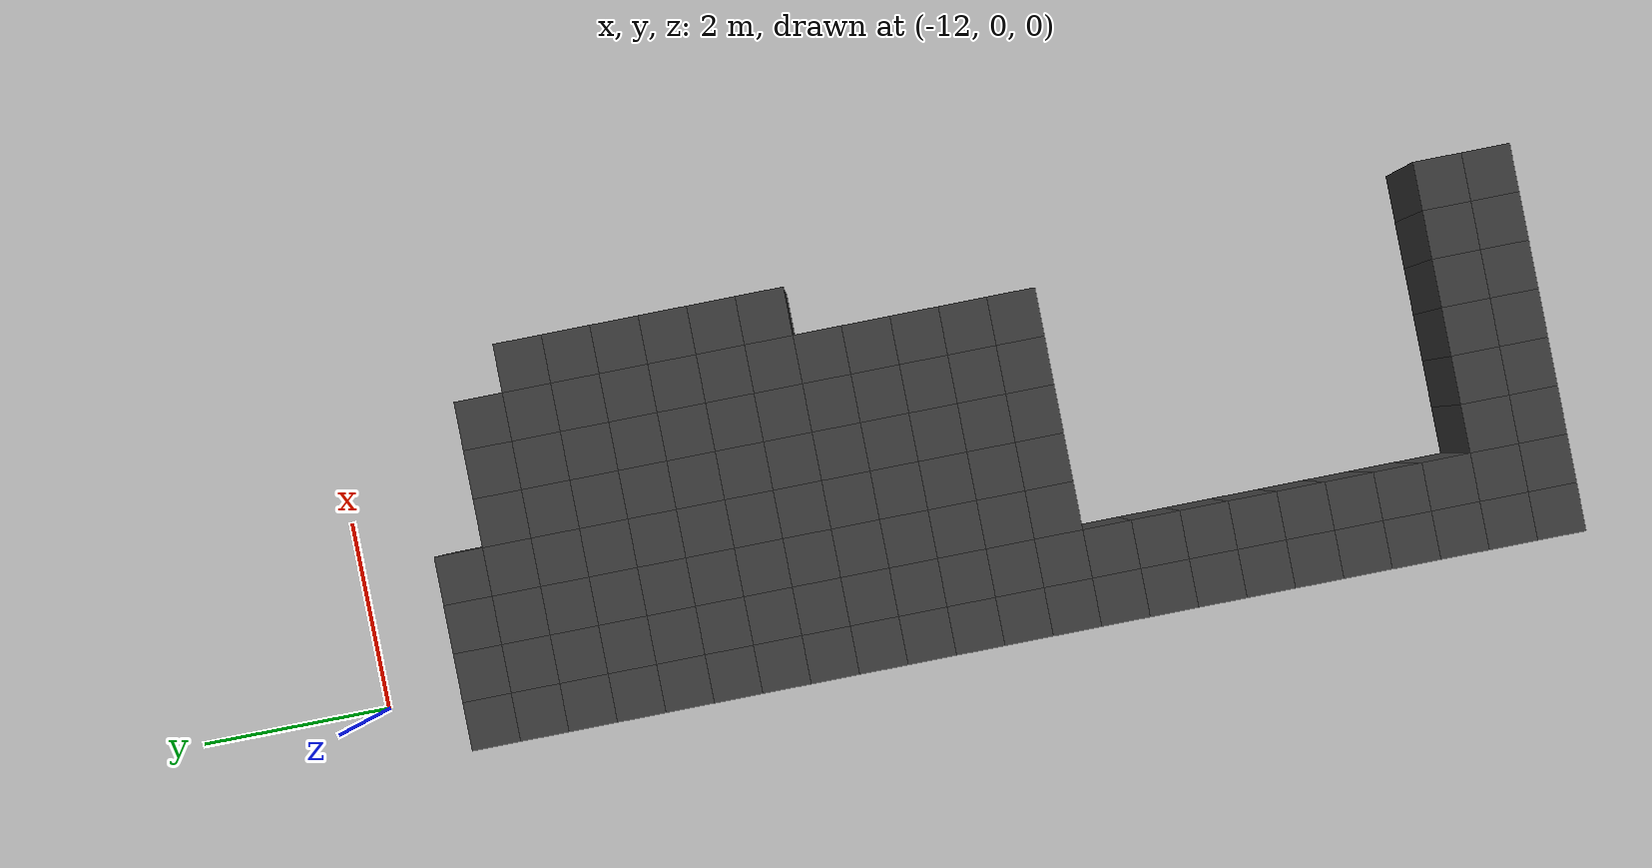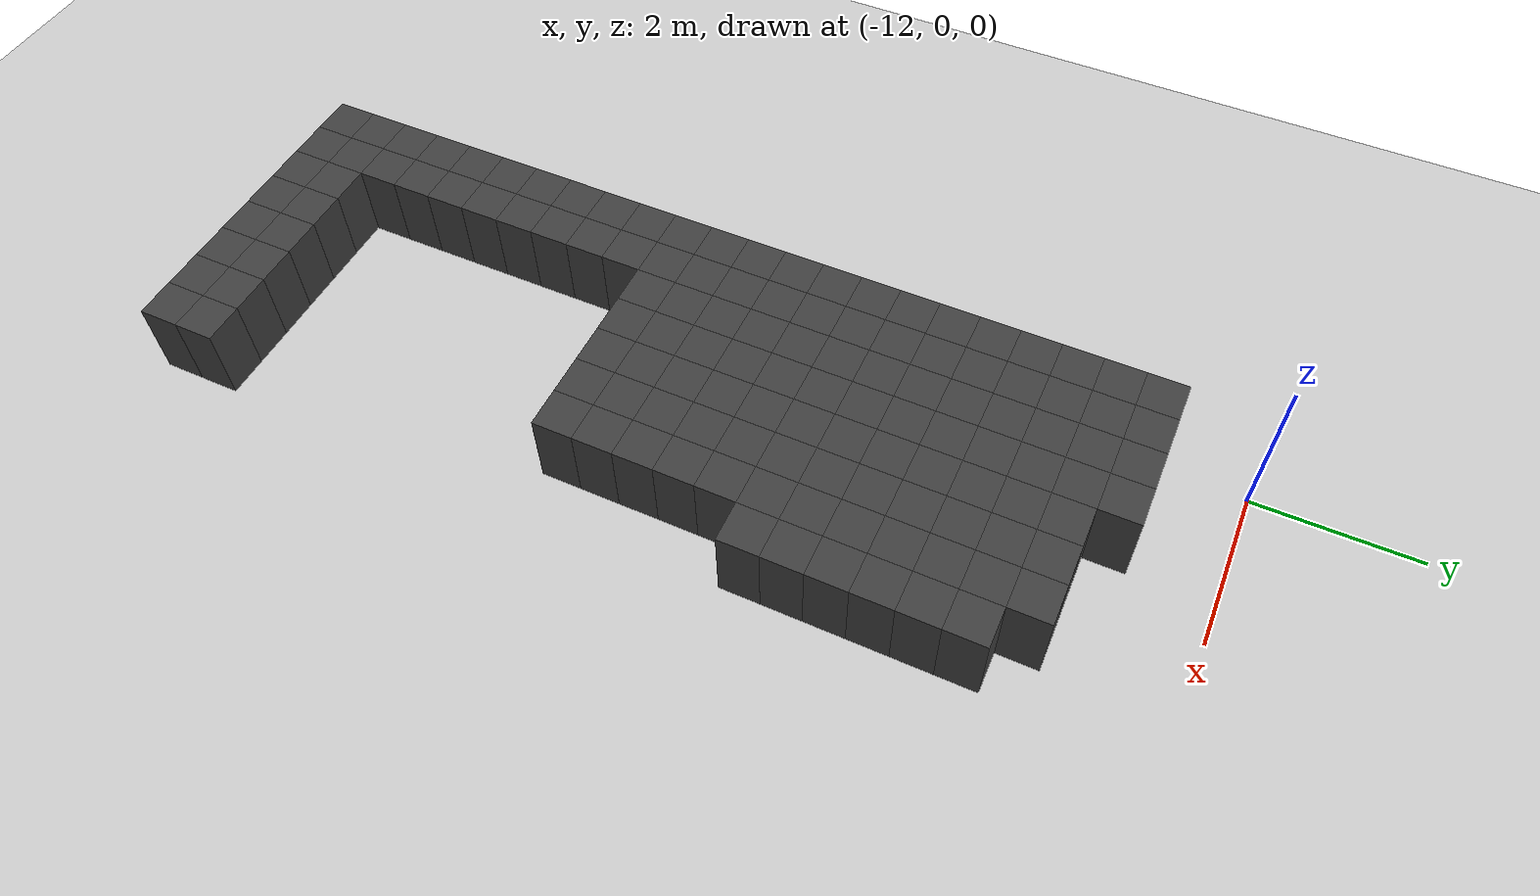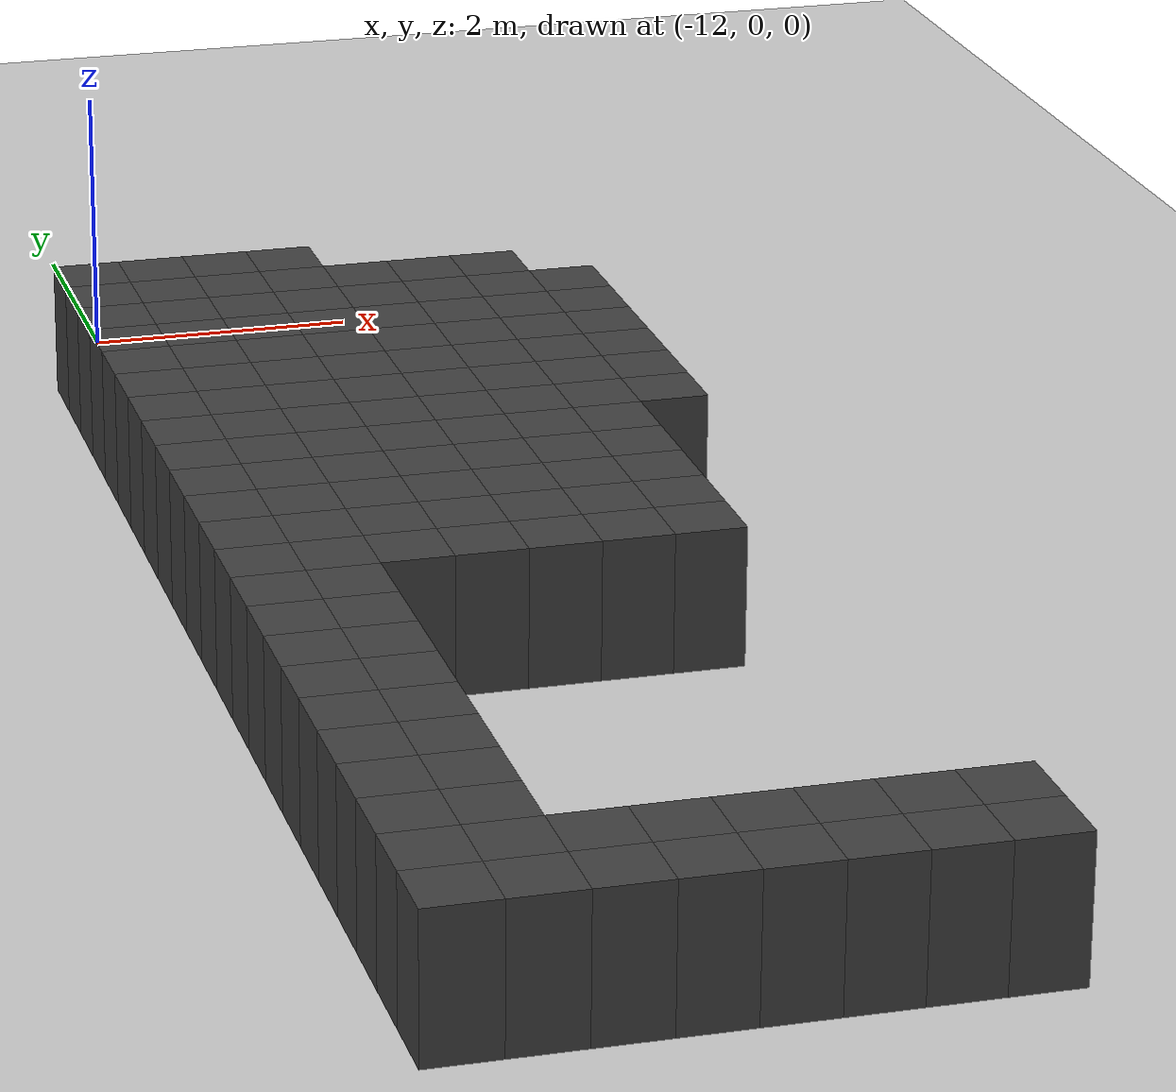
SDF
<sdf version="1.7">
 <world name="map_14190">
  <model name="ground_plane">
   <static>true</static>
   <link name="link">
    <collision name="collision">
     <geometry><plane><normal>0 0 1</normal><size>200 200</size></plane></geometry>
    </collision>
    <visual name="visual">
     <geometry><plane><normal>0 0 1</normal><size>200 200</size></plane></geometry>
     <material><ambient>0.8 0.8 0.8 1</ambient><diffuse>0.8 0.8 0.8 1</diffuse></material>
    </visual>
   </link>
  </model>
  <model name="maze_environment">
   <static>true</static>
   <link name="wall_952">
    <pose>-12.250 -1.250 0.500 0 0 0</pose>
    <collision name="col"><geometry><box><size>0.5 0.5 1.0</size></box></geometry></collision>
    <visual name="vis">
     <geometry><box><size>0.5 0.5 1.0</size></box></geometry>
     <material><ambient>0.15 0.15 0.15 1</ambient><diffuse>0.25 0.25 0.25 1</diffuse></material>
    </visual>
   </link>
   <link name="wall_953">
    <pose>-11.750 -1.250 0.500 0 0 0</pose>
    <collision name="col"><geometry><box><size>0.5 0.5 1.0</size></box></geometry></collision>
    <visual name="vis">
     <geometry><box><size>0.5 0.5 1.0</size></box></geometry>
     <material><ambient>0.15 0.15 0.15 1</ambient><diffuse>0.25 0.25 0.25 1</diffuse></material>
    </visual>
   </link>
   <link name="wall_954">
    <pose>-11.250 -1.250 0.500 0 0 0</pose>
    <collision name="col"><geometry><box><size>0.5 0.5 1.0</size></box></geometry></collision>
    <visual name="vis">
     <geometry><box><size>0.5 0.5 1.0</size></box></geometry>
     <material><ambient>0.15 0.15 0.15 1</ambient><diffuse>0.25 0.25 0.25 1</diffuse></material>
    </visual>
   </link>
   <link name="wall_955">
    <pose>-10.750 -1.250 0.500 0 0 0</pose>
    <collision name="col"><geometry><box><size>0.5 0.5 1.0</size></box></geometry></collision>
    <visual name="vis">
     <geometry><box><size>0.5 0.5 1.0</size></box></geometry>
     <material><ambient>0.15 0.15 0.15 1</ambient><diffuse>0.25 0.25 0.25 1</diffuse></material>
    </visual>
   </link>
   <link name="wall_985">
    <pose>-12.250 -1.750 0.500 0 0 0</pose>
    <collision name="col"><geometry><box><size>0.5 0.5 1.0</size></box></geometry></collision>
    <visual name="vis">
     <geometry><box><size>0.5 0.5 1.0</size></box></geometry>
     <material><ambient>0.15 0.15 0.15 1</ambient><diffuse>0.25 0.25 0.25 1</diffuse></material>
    </visual>
   </link>
   <link name="wall_986">
    <pose>-11.750 -1.750 0.500 0 0 0</pose>
    <collision name="col"><geometry><box><size>0.5 0.5 1.0</size></box></geometry></collision>
    <visual name="vis">
     <geometry><box><size>0.5 0.5 1.0</size></box></geometry>
     <material><ambient>0.15 0.15 0.15 1</ambient><diffuse>0.25 0.25 0.25 1</diffuse></material>
    </visual>
   </link>
   <link name="wall_987">
    <pose>-11.250 -1.750 0.500 0 0 0</pose>
    <collision name="col"><geometry><box><size>0.5 0.5 1.0</size></box></geometry></collision>
    <visual name="vis">
     <geometry><box><size>0.5 0.5 1.0</size></box></geometry>
     <material><ambient>0.15 0.15 0.15 1</ambient><diffuse>0.25 0.25 0.25 1</diffuse></material>
    </visual>
   </link>
   <link name="wall_988">
    <pose>-10.750 -1.750 0.500 0 0 0</pose>
    <collision name="col"><geometry><box><size>0.5 0.5 1.0</size></box></geometry></collision>
    <visual name="vis">
     <geometry><box><size>0.5 0.5 1.0</size></box></geometry>
     <material><ambient>0.15 0.15 0.15 1</ambient><diffuse>0.25 0.25 0.25 1</diffuse></material>
    </visual>
   </link>
   <link name="wall_989">
    <pose>-10.250 -1.750 0.500 0 0 0</pose>
    <collision name="col"><geometry><box><size>0.5 0.5 1.0</size></box></geometry></collision>
    <visual name="vis">
     <geometry><box><size>0.5 0.5 1.0</size></box></geometry>
     <material><ambient>0.15 0.15 0.15 1</ambient><diffuse>0.25 0.25 0.25 1</diffuse></material>
    </visual>
   </link>
   <link name="wall_990">
    <pose>-9.750 -1.750 0.500 0 0 0</pose>
    <collision name="col"><geometry><box><size>0.5 0.5 1.0</size></box></geometry></collision>
    <visual name="vis">
     <geometry><box><size>0.5 0.5 1.0</size></box></geometry>
     <material><ambient>0.15 0.15 0.15 1</ambient><diffuse>0.25 0.25 0.25 1</diffuse></material>
    </visual>
   </link>
   <link name="wall_991">
    <pose>-9.250 -1.750 0.500 0 0 0</pose>
    <collision name="col"><geometry><box><size>0.5 0.5 1.0</size></box></geometry></collision>
    <visual name="vis">
     <geometry><box><size>0.5 0.5 1.0</size></box></geometry>
     <material><ambient>0.15 0.15 0.15 1</ambient><diffuse>0.25 0.25 0.25 1</diffuse></material>
    </visual>
   </link>
   <link name="wall_1014">
    <pose>-12.250 -2.250 0.500 0 0 0</pose>
    <collision name="col"><geometry><box><size>0.5 0.5 1.0</size></box></geometry></collision>
    <visual name="vis">
     <geometry><box><size>0.5 0.5 1.0</size></box></geometry>
     <material><ambient>0.15 0.15 0.15 1</ambient><diffuse>0.25 0.25 0.25 1</diffuse></material>
    </visual>
   </link>
   <link name="wall_1015">
    <pose>-11.750 -2.250 0.500 0 0 0</pose>
    <collision name="col"><geometry><box><size>0.5 0.5 1.0</size></box></geometry></collision>
    <visual name="vis">
     <geometry><box><size>0.5 0.5 1.0</size></box></geometry>
     <material><ambient>0.15 0.15 0.15 1</ambient><diffuse>0.25 0.25 0.25 1</diffuse></material>
    </visual>
   </link>
   <link name="wall_1016">
    <pose>-11.250 -2.250 0.500 0 0 0</pose>
    <collision name="col"><geometry><box><size>0.5 0.5 1.0</size></box></geometry></collision>
    <visual name="vis">
     <geometry><box><size>0.5 0.5 1.0</size></box></geometry>
     <material><ambient>0.15 0.15 0.15 1</ambient><diffuse>0.25 0.25 0.25 1</diffuse></material>
    </visual>
   </link>
   <link name="wall_1017">
    <pose>-10.750 -2.250 0.500 0 0 0</pose>
    <collision name="col"><geometry><box><size>0.5 0.5 1.0</size></box></geometry></collision>
    <visual name="vis">
     <geometry><box><size>0.5 0.5 1.0</size></box></geometry>
     <material><ambient>0.15 0.15 0.15 1</ambient><diffuse>0.25 0.25 0.25 1</diffuse></material>
    </visual>
   </link>
   <link name="wall_1018">
    <pose>-10.250 -2.250 0.500 0 0 0</pose>
    <collision name="col"><geometry><box><size>0.5 0.5 1.0</size></box></geometry></collision>
    <visual name="vis">
     <geometry><box><size>0.5 0.5 1.0</size></box></geometry>
     <material><ambient>0.15 0.15 0.15 1</ambient><diffuse>0.25 0.25 0.25 1</diffuse></material>
    </visual>
   </link>
   <link name="wall_1019">
    <pose>-9.750 -2.250 0.500 0 0 0</pose>
    <collision name="col"><geometry><box><size>0.5 0.5 1.0</size></box></geometry></collision>
    <visual name="vis">
     <geometry><box><size>0.5 0.5 1.0</size></box></geometry>
     <material><ambient>0.15 0.15 0.15 1</ambient><diffuse>0.25 0.25 0.25 1</diffuse></material>
    </visual>
   </link>
   <link name="wall_1020">
    <pose>-9.250 -2.250 0.500 0 0 0</pose>
    <collision name="col"><geometry><box><size>0.5 0.5 1.0</size></box></geometry></collision>
    <visual name="vis">
     <geometry><box><size>0.5 0.5 1.0</size></box></geometry>
     <material><ambient>0.15 0.15 0.15 1</ambient><diffuse>0.25 0.25 0.25 1</diffuse></material>
    </visual>
   </link>
   <link name="wall_1021">
    <pose>-8.750 -2.250 0.500 0 0 0</pose>
    <collision name="col"><geometry><box><size>0.5 0.5 1.0</size></box></geometry></collision>
    <visual name="vis">
     <geometry><box><size>0.5 0.5 1.0</size></box></geometry>
     <material><ambient>0.15 0.15 0.15 1</ambient><diffuse>0.25 0.25 0.25 1</diffuse></material>
    </visual>
   </link>
   <link name="wall_1045">
    <pose>-12.250 -2.750 0.500 0 0 0</pose>
    <collision name="col"><geometry><box><size>0.5 0.5 1.0</size></box></geometry></collision>
    <visual name="vis">
     <geometry><box><size>0.5 0.5 1.0</size></box></geometry>
     <material><ambient>0.15 0.15 0.15 1</ambient><diffuse>0.25 0.25 0.25 1</diffuse></material>
    </visual>
   </link>
   <link name="wall_1046">
    <pose>-11.750 -2.750 0.500 0 0 0</pose>
    <collision name="col"><geometry><box><size>0.5 0.5 1.0</size></box></geometry></collision>
    <visual name="vis">
     <geometry><box><size>0.5 0.5 1.0</size></box></geometry>
     <material><ambient>0.15 0.15 0.15 1</ambient><diffuse>0.25 0.25 0.25 1</diffuse></material>
    </visual>
   </link>
   <link name="wall_1047">
    <pose>-11.250 -2.750 0.500 0 0 0</pose>
    <collision name="col"><geometry><box><size>0.5 0.5 1.0</size></box></geometry></collision>
    <visual name="vis">
     <geometry><box><size>0.5 0.5 1.0</size></box></geometry>
     <material><ambient>0.15 0.15 0.15 1</ambient><diffuse>0.25 0.25 0.25 1</diffuse></material>
    </visual>
   </link>
   <link name="wall_1048">
    <pose>-10.750 -2.750 0.500 0 0 0</pose>
    <collision name="col"><geometry><box><size>0.5 0.5 1.0</size></box></geometry></collision>
    <visual name="vis">
     <geometry><box><size>0.5 0.5 1.0</size></box></geometry>
     <material><ambient>0.15 0.15 0.15 1</ambient><diffuse>0.25 0.25 0.25 1</diffuse></material>
    </visual>
   </link>
   <link name="wall_1049">
    <pose>-10.250 -2.750 0.500 0 0 0</pose>
    <collision name="col"><geometry><box><size>0.5 0.5 1.0</size></box></geometry></collision>
    <visual name="vis">
     <geometry><box><size>0.5 0.5 1.0</size></box></geometry>
     <material><ambient>0.15 0.15 0.15 1</ambient><diffuse>0.25 0.25 0.25 1</diffuse></material>
    </visual>
   </link>
   <link name="wall_1050">
    <pose>-9.750 -2.750 0.500 0 0 0</pose>
    <collision name="col"><geometry><box><size>0.5 0.5 1.0</size></box></geometry></collision>
    <visual name="vis">
     <geometry><box><size>0.5 0.5 1.0</size></box></geometry>
     <material><ambient>0.15 0.15 0.15 1</ambient><diffuse>0.25 0.25 0.25 1</diffuse></material>
    </visual>
   </link>
   <link name="wall_1051">
    <pose>-9.250 -2.750 0.500 0 0 0</pose>
    <collision name="col"><geometry><box><size>0.5 0.5 1.0</size></box></geometry></collision>
    <visual name="vis">
     <geometry><box><size>0.5 0.5 1.0</size></box></geometry>
     <material><ambient>0.15 0.15 0.15 1</ambient><diffuse>0.25 0.25 0.25 1</diffuse></material>
    </visual>
   </link>
   <link name="wall_1052">
    <pose>-8.750 -2.750 0.500 0 0 0</pose>
    <collision name="col"><geometry><box><size>0.5 0.5 1.0</size></box></geometry></collision>
    <visual name="vis">
     <geometry><box><size>0.5 0.5 1.0</size></box></geometry>
     <material><ambient>0.15 0.15 0.15 1</ambient><diffuse>0.25 0.25 0.25 1</diffuse></material>
    </visual>
   </link>
   <link name="wall_1082">
    <pose>-12.250 -3.250 0.500 0 0 0</pose>
    <collision name="col"><geometry><box><size>0.5 0.5 1.0</size></box></geometry></collision>
    <visual name="vis">
     <geometry><box><size>0.5 0.5 1.0</size></box></geometry>
     <material><ambient>0.15 0.15 0.15 1</ambient><diffuse>0.25 0.25 0.25 1</diffuse></material>
    </visual>
   </link>
   <link name="wall_1083">
    <pose>-11.750 -3.250 0.500 0 0 0</pose>
    <collision name="col"><geometry><box><size>0.5 0.5 1.0</size></box></geometry></collision>
    <visual name="vis">
     <geometry><box><size>0.5 0.5 1.0</size></box></geometry>
     <material><ambient>0.15 0.15 0.15 1</ambient><diffuse>0.25 0.25 0.25 1</diffuse></material>
    </visual>
   </link>
   <link name="wall_1084">
    <pose>-11.250 -3.250 0.500 0 0 0</pose>
    <collision name="col"><geometry><box><size>0.5 0.5 1.0</size></box></geometry></collision>
    <visual name="vis">
     <geometry><box><size>0.5 0.5 1.0</size></box></geometry>
     <material><ambient>0.15 0.15 0.15 1</ambient><diffuse>0.25 0.25 0.25 1</diffuse></material>
    </visual>
   </link>
   <link name="wall_1085">
    <pose>-10.750 -3.250 0.500 0 0 0</pose>
    <collision name="col"><geometry><box><size>0.5 0.5 1.0</size></box></geometry></collision>
    <visual name="vis">
     <geometry><box><size>0.5 0.5 1.0</size></box></geometry>
     <material><ambient>0.15 0.15 0.15 1</ambient><diffuse>0.25 0.25 0.25 1</diffuse></material>
    </visual>
   </link>
   <link name="wall_1086">
    <pose>-10.250 -3.250 0.500 0 0 0</pose>
    <collision name="col"><geometry><box><size>0.5 0.5 1.0</size></box></geometry></collision>
    <visual name="vis">
     <geometry><box><size>0.5 0.5 1.0</size></box></geometry>
     <material><ambient>0.15 0.15 0.15 1</ambient><diffuse>0.25 0.25 0.25 1</diffuse></material>
    </visual>
   </link>
   <link name="wall_1087">
    <pose>-9.750 -3.250 0.500 0 0 0</pose>
    <collision name="col"><geometry><box><size>0.5 0.5 1.0</size></box></geometry></collision>
    <visual name="vis">
     <geometry><box><size>0.5 0.5 1.0</size></box></geometry>
     <material><ambient>0.15 0.15 0.15 1</ambient><diffuse>0.25 0.25 0.25 1</diffuse></material>
    </visual>
   </link>
   <link name="wall_1088">
    <pose>-9.250 -3.250 0.500 0 0 0</pose>
    <collision name="col"><geometry><box><size>0.5 0.5 1.0</size></box></geometry></collision>
    <visual name="vis">
     <geometry><box><size>0.5 0.5 1.0</size></box></geometry>
     <material><ambient>0.15 0.15 0.15 1</ambient><diffuse>0.25 0.25 0.25 1</diffuse></material>
    </visual>
   </link>
   <link name="wall_1089">
    <pose>-8.750 -3.250 0.500 0 0 0</pose>
    <collision name="col"><geometry><box><size>0.5 0.5 1.0</size></box></geometry></collision>
    <visual name="vis">
     <geometry><box><size>0.5 0.5 1.0</size></box></geometry>
     <material><ambient>0.15 0.15 0.15 1</ambient><diffuse>0.25 0.25 0.25 1</diffuse></material>
    </visual>
   </link>
   <link name="wall_1116">
    <pose>-12.250 -3.750 0.500 0 0 0</pose>
    <collision name="col"><geometry><box><size>0.5 0.5 1.0</size></box></geometry></collision>
    <visual name="vis">
     <geometry><box><size>0.5 0.5 1.0</size></box></geometry>
     <material><ambient>0.15 0.15 0.15 1</ambient><diffuse>0.25 0.25 0.25 1</diffuse></material>
    </visual>
   </link>
   <link name="wall_1117">
    <pose>-11.750 -3.750 0.500 0 0 0</pose>
    <collision name="col"><geometry><box><size>0.5 0.5 1.0</size></box></geometry></collision>
    <visual name="vis">
     <geometry><box><size>0.5 0.5 1.0</size></box></geometry>
     <material><ambient>0.15 0.15 0.15 1</ambient><diffuse>0.25 0.25 0.25 1</diffuse></material>
    </visual>
   </link>
   <link name="wall_1118">
    <pose>-11.250 -3.750 0.500 0 0 0</pose>
    <collision name="col"><geometry><box><size>0.5 0.5 1.0</size></box></geometry></collision>
    <visual name="vis">
     <geometry><box><size>0.5 0.5 1.0</size></box></geometry>
     <material><ambient>0.15 0.15 0.15 1</ambient><diffuse>0.25 0.25 0.25 1</diffuse></material>
    </visual>
   </link>
   <link name="wall_1119">
    <pose>-10.750 -3.750 0.500 0 0 0</pose>
    <collision name="col"><geometry><box><size>0.5 0.5 1.0</size></box></geometry></collision>
    <visual name="vis">
     <geometry><box><size>0.5 0.5 1.0</size></box></geometry>
     <material><ambient>0.15 0.15 0.15 1</ambient><diffuse>0.25 0.25 0.25 1</diffuse></material>
    </visual>
   </link>
   <link name="wall_1120">
    <pose>-10.250 -3.750 0.500 0 0 0</pose>
    <collision name="col"><geometry><box><size>0.5 0.5 1.0</size></box></geometry></collision>
    <visual name="vis">
     <geometry><box><size>0.5 0.5 1.0</size></box></geometry>
     <material><ambient>0.15 0.15 0.15 1</ambient><diffuse>0.25 0.25 0.25 1</diffuse></material>
    </visual>
   </link>
   <link name="wall_1121">
    <pose>-9.750 -3.750 0.500 0 0 0</pose>
    <collision name="col"><geometry><box><size>0.5 0.5 1.0</size></box></geometry></collision>
    <visual name="vis">
     <geometry><box><size>0.5 0.5 1.0</size></box></geometry>
     <material><ambient>0.15 0.15 0.15 1</ambient><diffuse>0.25 0.25 0.25 1</diffuse></material>
    </visual>
   </link>
   <link name="wall_1122">
    <pose>-9.250 -3.750 0.500 0 0 0</pose>
    <collision name="col"><geometry><box><size>0.5 0.5 1.0</size></box></geometry></collision>
    <visual name="vis">
     <geometry><box><size>0.5 0.5 1.0</size></box></geometry>
     <material><ambient>0.15 0.15 0.15 1</ambient><diffuse>0.25 0.25 0.25 1</diffuse></material>
    </visual>
   </link>
   <link name="wall_1123">
    <pose>-8.750 -3.750 0.500 0 0 0</pose>
    <collision name="col"><geometry><box><size>0.5 0.5 1.0</size></box></geometry></collision>
    <visual name="vis">
     <geometry><box><size>0.5 0.5 1.0</size></box></geometry>
     <material><ambient>0.15 0.15 0.15 1</ambient><diffuse>0.25 0.25 0.25 1</diffuse></material>
    </visual>
   </link>
   <link name="wall_1151">
    <pose>-12.250 -4.250 0.500 0 0 0</pose>
    <collision name="col"><geometry><box><size>0.5 0.5 1.0</size></box></geometry></collision>
    <visual name="vis">
     <geometry><box><size>0.5 0.5 1.0</size></box></geometry>
     <material><ambient>0.15 0.15 0.15 1</ambient><diffuse>0.25 0.25 0.25 1</diffuse></material>
    </visual>
   </link>
   <link name="wall_1152">
    <pose>-11.750 -4.250 0.500 0 0 0</pose>
    <collision name="col"><geometry><box><size>0.5 0.5 1.0</size></box></geometry></collision>
    <visual name="vis">
     <geometry><box><size>0.5 0.5 1.0</size></box></geometry>
     <material><ambient>0.15 0.15 0.15 1</ambient><diffuse>0.25 0.25 0.25 1</diffuse></material>
    </visual>
   </link>
   <link name="wall_1153">
    <pose>-11.250 -4.250 0.500 0 0 0</pose>
    <collision name="col"><geometry><box><size>0.5 0.5 1.0</size></box></geometry></collision>
    <visual name="vis">
     <geometry><box><size>0.5 0.5 1.0</size></box></geometry>
     <material><ambient>0.15 0.15 0.15 1</ambient><diffuse>0.25 0.25 0.25 1</diffuse></material>
    </visual>
   </link>
   <link name="wall_1154">
    <pose>-10.750 -4.250 0.500 0 0 0</pose>
    <collision name="col"><geometry><box><size>0.5 0.5 1.0</size></box></geometry></collision>
    <visual name="vis">
     <geometry><box><size>0.5 0.5 1.0</size></box></geometry>
     <material><ambient>0.15 0.15 0.15 1</ambient><diffuse>0.25 0.25 0.25 1</diffuse></material>
    </visual>
   </link>
   <link name="wall_1155">
    <pose>-10.250 -4.250 0.500 0 0 0</pose>
    <collision name="col"><geometry><box><size>0.5 0.5 1.0</size></box></geometry></collision>
    <visual name="vis">
     <geometry><box><size>0.5 0.5 1.0</size></box></geometry>
     <material><ambient>0.15 0.15 0.15 1</ambient><diffuse>0.25 0.25 0.25 1</diffuse></material>
    </visual>
   </link>
   <link name="wall_1156">
    <pose>-9.750 -4.250 0.500 0 0 0</pose>
    <collision name="col"><geometry><box><size>0.5 0.5 1.0</size></box></geometry></collision>
    <visual name="vis">
     <geometry><box><size>0.5 0.5 1.0</size></box></geometry>
     <material><ambient>0.15 0.15 0.15 1</ambient><diffuse>0.25 0.25 0.25 1</diffuse></material>
    </visual>
   </link>
   <link name="wall_1157">
    <pose>-9.250 -4.250 0.500 0 0 0</pose>
    <collision name="col"><geometry><box><size>0.5 0.5 1.0</size></box></geometry></collision>
    <visual name="vis">
     <geometry><box><size>0.5 0.5 1.0</size></box></geometry>
     <material><ambient>0.15 0.15 0.15 1</ambient><diffuse>0.25 0.25 0.25 1</diffuse></material>
    </visual>
   </link>
   <link name="wall_1158">
    <pose>-8.750 -4.250 0.500 0 0 0</pose>
    <collision name="col"><geometry><box><size>0.5 0.5 1.0</size></box></geometry></collision>
    <visual name="vis">
     <geometry><box><size>0.5 0.5 1.0</size></box></geometry>
     <material><ambient>0.15 0.15 0.15 1</ambient><diffuse>0.25 0.25 0.25 1</diffuse></material>
    </visual>
   </link>
   <link name="wall_1192">
    <pose>-12.250 -4.750 0.500 0 0 0</pose>
    <collision name="col"><geometry><box><size>0.5 0.5 1.0</size></box></geometry></collision>
    <visual name="vis">
     <geometry><box><size>0.5 0.5 1.0</size></box></geometry>
     <material><ambient>0.15 0.15 0.15 1</ambient><diffuse>0.25 0.25 0.25 1</diffuse></material>
    </visual>
   </link>
   <link name="wall_1193">
    <pose>-11.750 -4.750 0.500 0 0 0</pose>
    <collision name="col"><geometry><box><size>0.5 0.5 1.0</size></box></geometry></collision>
    <visual name="vis">
     <geometry><box><size>0.5 0.5 1.0</size></box></geometry>
     <material><ambient>0.15 0.15 0.15 1</ambient><diffuse>0.25 0.25 0.25 1</diffuse></material>
    </visual>
   </link>
   <link name="wall_1194">
    <pose>-11.250 -4.750 0.500 0 0 0</pose>
    <collision name="col"><geometry><box><size>0.5 0.5 1.0</size></box></geometry></collision>
    <visual name="vis">
     <geometry><box><size>0.5 0.5 1.0</size></box></geometry>
     <material><ambient>0.15 0.15 0.15 1</ambient><diffuse>0.25 0.25 0.25 1</diffuse></material>
    </visual>
   </link>
   <link name="wall_1195">
    <pose>-10.750 -4.750 0.500 0 0 0</pose>
    <collision name="col"><geometry><box><size>0.5 0.5 1.0</size></box></geometry></collision>
    <visual name="vis">
     <geometry><box><size>0.5 0.5 1.0</size></box></geometry>
     <material><ambient>0.15 0.15 0.15 1</ambient><diffuse>0.25 0.25 0.25 1</diffuse></material>
    </visual>
   </link>
   <link name="wall_1196">
    <pose>-10.250 -4.750 0.500 0 0 0</pose>
    <collision name="col"><geometry><box><size>0.5 0.5 1.0</size></box></geometry></collision>
    <visual name="vis">
     <geometry><box><size>0.5 0.5 1.0</size></box></geometry>
     <material><ambient>0.15 0.15 0.15 1</ambient><diffuse>0.25 0.25 0.25 1</diffuse></material>
    </visual>
   </link>
   <link name="wall_1197">
    <pose>-9.750 -4.750 0.500 0 0 0</pose>
    <collision name="col"><geometry><box><size>0.5 0.5 1.0</size></box></geometry></collision>
    <visual name="vis">
     <geometry><box><size>0.5 0.5 1.0</size></box></geometry>
     <material><ambient>0.15 0.15 0.15 1</ambient><diffuse>0.25 0.25 0.25 1</diffuse></material>
    </visual>
   </link>
   <link name="wall_1198">
    <pose>-9.250 -4.750 0.500 0 0 0</pose>
    <collision name="col"><geometry><box><size>0.5 0.5 1.0</size></box></geometry></collision>
    <visual name="vis">
     <geometry><box><size>0.5 0.5 1.0</size></box></geometry>
     <material><ambient>0.15 0.15 0.15 1</ambient><diffuse>0.25 0.25 0.25 1</diffuse></material>
    </visual>
   </link>
   <link name="wall_1199">
    <pose>-8.750 -4.750 0.500 0 0 0</pose>
    <collision name="col"><geometry><box><size>0.5 0.5 1.0</size></box></geometry></collision>
    <visual name="vis">
     <geometry><box><size>0.5 0.5 1.0</size></box></geometry>
     <material><ambient>0.15 0.15 0.15 1</ambient><diffuse>0.25 0.25 0.25 1</diffuse></material>
    </visual>
   </link>
   <link name="wall_1226">
    <pose>-12.250 -5.250 0.500 0 0 0</pose>
    <collision name="col"><geometry><box><size>0.5 0.5 1.0</size></box></geometry></collision>
    <visual name="vis">
     <geometry><box><size>0.5 0.5 1.0</size></box></geometry>
     <material><ambient>0.15 0.15 0.15 1</ambient><diffuse>0.25 0.25 0.25 1</diffuse></material>
    </visual>
   </link>
   <link name="wall_1227">
    <pose>-11.750 -5.250 0.500 0 0 0</pose>
    <collision name="col"><geometry><box><size>0.5 0.5 1.0</size></box></geometry></collision>
    <visual name="vis">
     <geometry><box><size>0.5 0.5 1.0</size></box></geometry>
     <material><ambient>0.15 0.15 0.15 1</ambient><diffuse>0.25 0.25 0.25 1</diffuse></material>
    </visual>
   </link>
   <link name="wall_1228">
    <pose>-11.250 -5.250 0.500 0 0 0</pose>
    <collision name="col"><geometry><box><size>0.5 0.5 1.0</size></box></geometry></collision>
    <visual name="vis">
     <geometry><box><size>0.5 0.5 1.0</size></box></geometry>
     <material><ambient>0.15 0.15 0.15 1</ambient><diffuse>0.25 0.25 0.25 1</diffuse></material>
    </visual>
   </link>
   <link name="wall_1229">
    <pose>-10.750 -5.250 0.500 0 0 0</pose>
    <collision name="col"><geometry><box><size>0.5 0.5 1.0</size></box></geometry></collision>
    <visual name="vis">
     <geometry><box><size>0.5 0.5 1.0</size></box></geometry>
     <material><ambient>0.15 0.15 0.15 1</ambient><diffuse>0.25 0.25 0.25 1</diffuse></material>
    </visual>
   </link>
   <link name="wall_1230">
    <pose>-10.250 -5.250 0.500 0 0 0</pose>
    <collision name="col"><geometry><box><size>0.5 0.5 1.0</size></box></geometry></collision>
    <visual name="vis">
     <geometry><box><size>0.5 0.5 1.0</size></box></geometry>
     <material><ambient>0.15 0.15 0.15 1</ambient><diffuse>0.25 0.25 0.25 1</diffuse></material>
    </visual>
   </link>
   <link name="wall_1231">
    <pose>-9.750 -5.250 0.500 0 0 0</pose>
    <collision name="col"><geometry><box><size>0.5 0.5 1.0</size></box></geometry></collision>
    <visual name="vis">
     <geometry><box><size>0.5 0.5 1.0</size></box></geometry>
     <material><ambient>0.15 0.15 0.15 1</ambient><diffuse>0.25 0.25 0.25 1</diffuse></material>
    </visual>
   </link>
   <link name="wall_1232">
    <pose>-9.250 -5.250 0.500 0 0 0</pose>
    <collision name="col"><geometry><box><size>0.5 0.5 1.0</size></box></geometry></collision>
    <visual name="vis">
     <geometry><box><size>0.5 0.5 1.0</size></box></geometry>
     <material><ambient>0.15 0.15 0.15 1</ambient><diffuse>0.25 0.25 0.25 1</diffuse></material>
    </visual>
   </link>
   <link name="wall_1261">
    <pose>-12.250 -5.750 0.500 0 0 0</pose>
    <collision name="col"><geometry><box><size>0.5 0.5 1.0</size></box></geometry></collision>
    <visual name="vis">
     <geometry><box><size>0.5 0.5 1.0</size></box></geometry>
     <material><ambient>0.15 0.15 0.15 1</ambient><diffuse>0.25 0.25 0.25 1</diffuse></material>
    </visual>
   </link>
   <link name="wall_1262">
    <pose>-11.750 -5.750 0.500 0 0 0</pose>
    <collision name="col"><geometry><box><size>0.5 0.5 1.0</size></box></geometry></collision>
    <visual name="vis">
     <geometry><box><size>0.5 0.5 1.0</size></box></geometry>
     <material><ambient>0.15 0.15 0.15 1</ambient><diffuse>0.25 0.25 0.25 1</diffuse></material>
    </visual>
   </link>
   <link name="wall_1263">
    <pose>-11.250 -5.750 0.500 0 0 0</pose>
    <collision name="col"><geometry><box><size>0.5 0.5 1.0</size></box></geometry></collision>
    <visual name="vis">
     <geometry><box><size>0.5 0.5 1.0</size></box></geometry>
     <material><ambient>0.15 0.15 0.15 1</ambient><diffuse>0.25 0.25 0.25 1</diffuse></material>
    </visual>
   </link>
   <link name="wall_1264">
    <pose>-10.750 -5.750 0.500 0 0 0</pose>
    <collision name="col"><geometry><box><size>0.5 0.5 1.0</size></box></geometry></collision>
    <visual name="vis">
     <geometry><box><size>0.5 0.5 1.0</size></box></geometry>
     <material><ambient>0.15 0.15 0.15 1</ambient><diffuse>0.25 0.25 0.25 1</diffuse></material>
    </visual>
   </link>
   <link name="wall_1265">
    <pose>-10.250 -5.750 0.500 0 0 0</pose>
    <collision name="col"><geometry><box><size>0.5 0.5 1.0</size></box></geometry></collision>
    <visual name="vis">
     <geometry><box><size>0.5 0.5 1.0</size></box></geometry>
     <material><ambient>0.15 0.15 0.15 1</ambient><diffuse>0.25 0.25 0.25 1</diffuse></material>
    </visual>
   </link>
   <link name="wall_1266">
    <pose>-9.750 -5.750 0.500 0 0 0</pose>
    <collision name="col"><geometry><box><size>0.5 0.5 1.0</size></box></geometry></collision>
    <visual name="vis">
     <geometry><box><size>0.5 0.5 1.0</size></box></geometry>
     <material><ambient>0.15 0.15 0.15 1</ambient><diffuse>0.25 0.25 0.25 1</diffuse></material>
    </visual>
   </link>
   <link name="wall_1267">
    <pose>-9.250 -5.750 0.500 0 0 0</pose>
    <collision name="col"><geometry><box><size>0.5 0.5 1.0</size></box></geometry></collision>
    <visual name="vis">
     <geometry><box><size>0.5 0.5 1.0</size></box></geometry>
     <material><ambient>0.15 0.15 0.15 1</ambient><diffuse>0.25 0.25 0.25 1</diffuse></material>
    </visual>
   </link>
   <link name="wall_1296">
    <pose>-12.250 -6.250 0.500 0 0 0</pose>
    <collision name="col"><geometry><box><size>0.5 0.5 1.0</size></box></geometry></collision>
    <visual name="vis">
     <geometry><box><size>0.5 0.5 1.0</size></box></geometry>
     <material><ambient>0.15 0.15 0.15 1</ambient><diffuse>0.25 0.25 0.25 1</diffuse></material>
    </visual>
   </link>
   <link name="wall_1297">
    <pose>-11.750 -6.250 0.500 0 0 0</pose>
    <collision name="col"><geometry><box><size>0.5 0.5 1.0</size></box></geometry></collision>
    <visual name="vis">
     <geometry><box><size>0.5 0.5 1.0</size></box></geometry>
     <material><ambient>0.15 0.15 0.15 1</ambient><diffuse>0.25 0.25 0.25 1</diffuse></material>
    </visual>
   </link>
   <link name="wall_1298">
    <pose>-11.250 -6.250 0.500 0 0 0</pose>
    <collision name="col"><geometry><box><size>0.5 0.5 1.0</size></box></geometry></collision>
    <visual name="vis">
     <geometry><box><size>0.5 0.5 1.0</size></box></geometry>
     <material><ambient>0.15 0.15 0.15 1</ambient><diffuse>0.25 0.25 0.25 1</diffuse></material>
    </visual>
   </link>
   <link name="wall_1299">
    <pose>-10.750 -6.250 0.500 0 0 0</pose>
    <collision name="col"><geometry><box><size>0.5 0.5 1.0</size></box></geometry></collision>
    <visual name="vis">
     <geometry><box><size>0.5 0.5 1.0</size></box></geometry>
     <material><ambient>0.15 0.15 0.15 1</ambient><diffuse>0.25 0.25 0.25 1</diffuse></material>
    </visual>
   </link>
   <link name="wall_1300">
    <pose>-10.250 -6.250 0.500 0 0 0</pose>
    <collision name="col"><geometry><box><size>0.5 0.5 1.0</size></box></geometry></collision>
    <visual name="vis">
     <geometry><box><size>0.5 0.5 1.0</size></box></geometry>
     <material><ambient>0.15 0.15 0.15 1</ambient><diffuse>0.25 0.25 0.25 1</diffuse></material>
    </visual>
   </link>
   <link name="wall_1301">
    <pose>-9.750 -6.250 0.500 0 0 0</pose>
    <collision name="col"><geometry><box><size>0.5 0.5 1.0</size></box></geometry></collision>
    <visual name="vis">
     <geometry><box><size>0.5 0.5 1.0</size></box></geometry>
     <material><ambient>0.15 0.15 0.15 1</ambient><diffuse>0.25 0.25 0.25 1</diffuse></material>
    </visual>
   </link>
   <link name="wall_1302">
    <pose>-9.250 -6.250 0.500 0 0 0</pose>
    <collision name="col"><geometry><box><size>0.5 0.5 1.0</size></box></geometry></collision>
    <visual name="vis">
     <geometry><box><size>0.5 0.5 1.0</size></box></geometry>
     <material><ambient>0.15 0.15 0.15 1</ambient><diffuse>0.25 0.25 0.25 1</diffuse></material>
    </visual>
   </link>
   <link name="wall_1337">
    <pose>-12.250 -6.750 0.500 0 0 0</pose>
    <collision name="col"><geometry><box><size>0.5 0.5 1.0</size></box></geometry></collision>
    <visual name="vis">
     <geometry><box><size>0.5 0.5 1.0</size></box></geometry>
     <material><ambient>0.15 0.15 0.15 1</ambient><diffuse>0.25 0.25 0.25 1</diffuse></material>
    </visual>
   </link>
   <link name="wall_1338">
    <pose>-11.750 -6.750 0.500 0 0 0</pose>
    <collision name="col"><geometry><box><size>0.5 0.5 1.0</size></box></geometry></collision>
    <visual name="vis">
     <geometry><box><size>0.5 0.5 1.0</size></box></geometry>
     <material><ambient>0.15 0.15 0.15 1</ambient><diffuse>0.25 0.25 0.25 1</diffuse></material>
    </visual>
   </link>
   <link name="wall_1339">
    <pose>-11.250 -6.750 0.500 0 0 0</pose>
    <collision name="col"><geometry><box><size>0.5 0.5 1.0</size></box></geometry></collision>
    <visual name="vis">
     <geometry><box><size>0.5 0.5 1.0</size></box></geometry>
     <material><ambient>0.15 0.15 0.15 1</ambient><diffuse>0.25 0.25 0.25 1</diffuse></material>
    </visual>
   </link>
   <link name="wall_1340">
    <pose>-10.750 -6.750 0.500 0 0 0</pose>
    <collision name="col"><geometry><box><size>0.5 0.5 1.0</size></box></geometry></collision>
    <visual name="vis">
     <geometry><box><size>0.5 0.5 1.0</size></box></geometry>
     <material><ambient>0.15 0.15 0.15 1</ambient><diffuse>0.25 0.25 0.25 1</diffuse></material>
    </visual>
   </link>
   <link name="wall_1341">
    <pose>-10.250 -6.750 0.500 0 0 0</pose>
    <collision name="col"><geometry><box><size>0.5 0.5 1.0</size></box></geometry></collision>
    <visual name="vis">
     <geometry><box><size>0.5 0.5 1.0</size></box></geometry>
     <material><ambient>0.15 0.15 0.15 1</ambient><diffuse>0.25 0.25 0.25 1</diffuse></material>
    </visual>
   </link>
   <link name="wall_1342">
    <pose>-9.750 -6.750 0.500 0 0 0</pose>
    <collision name="col"><geometry><box><size>0.5 0.5 1.0</size></box></geometry></collision>
    <visual name="vis">
     <geometry><box><size>0.5 0.5 1.0</size></box></geometry>
     <material><ambient>0.15 0.15 0.15 1</ambient><diffuse>0.25 0.25 0.25 1</diffuse></material>
    </visual>
   </link>
   <link name="wall_1343">
    <pose>-9.250 -6.750 0.500 0 0 0</pose>
    <collision name="col"><geometry><box><size>0.5 0.5 1.0</size></box></geometry></collision>
    <visual name="vis">
     <geometry><box><size>0.5 0.5 1.0</size></box></geometry>
     <material><ambient>0.15 0.15 0.15 1</ambient><diffuse>0.25 0.25 0.25 1</diffuse></material>
    </visual>
   </link>
   <link name="wall_1378">
    <pose>-12.250 -7.250 0.500 0 0 0</pose>
    <collision name="col"><geometry><box><size>0.5 0.5 1.0</size></box></geometry></collision>
    <visual name="vis">
     <geometry><box><size>0.5 0.5 1.0</size></box></geometry>
     <material><ambient>0.15 0.15 0.15 1</ambient><diffuse>0.25 0.25 0.25 1</diffuse></material>
    </visual>
   </link>
   <link name="wall_1379">
    <pose>-11.750 -7.250 0.500 0 0 0</pose>
    <collision name="col"><geometry><box><size>0.5 0.5 1.0</size></box></geometry></collision>
    <visual name="vis">
     <geometry><box><size>0.5 0.5 1.0</size></box></geometry>
     <material><ambient>0.15 0.15 0.15 1</ambient><diffuse>0.25 0.25 0.25 1</diffuse></material>
    </visual>
   </link>
   <link name="wall_1380">
    <pose>-11.250 -7.250 0.500 0 0 0</pose>
    <collision name="col"><geometry><box><size>0.5 0.5 1.0</size></box></geometry></collision>
    <visual name="vis">
     <geometry><box><size>0.5 0.5 1.0</size></box></geometry>
     <material><ambient>0.15 0.15 0.15 1</ambient><diffuse>0.25 0.25 0.25 1</diffuse></material>
    </visual>
   </link>
   <link name="wall_1381">
    <pose>-10.750 -7.250 0.500 0 0 0</pose>
    <collision name="col"><geometry><box><size>0.5 0.5 1.0</size></box></geometry></collision>
    <visual name="vis">
     <geometry><box><size>0.5 0.5 1.0</size></box></geometry>
     <material><ambient>0.15 0.15 0.15 1</ambient><diffuse>0.25 0.25 0.25 1</diffuse></material>
    </visual>
   </link>
   <link name="wall_1382">
    <pose>-10.250 -7.250 0.500 0 0 0</pose>
    <collision name="col"><geometry><box><size>0.5 0.5 1.0</size></box></geometry></collision>
    <visual name="vis">
     <geometry><box><size>0.5 0.5 1.0</size></box></geometry>
     <material><ambient>0.15 0.15 0.15 1</ambient><diffuse>0.25 0.25 0.25 1</diffuse></material>
    </visual>
   </link>
   <link name="wall_1383">
    <pose>-9.750 -7.250 0.500 0 0 0</pose>
    <collision name="col"><geometry><box><size>0.5 0.5 1.0</size></box></geometry></collision>
    <visual name="vis">
     <geometry><box><size>0.5 0.5 1.0</size></box></geometry>
     <material><ambient>0.15 0.15 0.15 1</ambient><diffuse>0.25 0.25 0.25 1</diffuse></material>
    </visual>
   </link>
   <link name="wall_1384">
    <pose>-9.250 -7.250 0.500 0 0 0</pose>
    <collision name="col"><geometry><box><size>0.5 0.5 1.0</size></box></geometry></collision>
    <visual name="vis">
     <geometry><box><size>0.5 0.5 1.0</size></box></geometry>
     <material><ambient>0.15 0.15 0.15 1</ambient><diffuse>0.25 0.25 0.25 1</diffuse></material>
    </visual>
   </link>
   <link name="wall_1416">
    <pose>-12.250 -7.750 0.500 0 0 0</pose>
    <collision name="col"><geometry><box><size>0.5 0.5 1.0</size></box></geometry></collision>
    <visual name="vis">
     <geometry><box><size>0.5 0.5 1.0</size></box></geometry>
     <material><ambient>0.15 0.15 0.15 1</ambient><diffuse>0.25 0.25 0.25 1</diffuse></material>
    </visual>
   </link>
   <link name="wall_1417">
    <pose>-11.750 -7.750 0.500 0 0 0</pose>
    <collision name="col"><geometry><box><size>0.5 0.5 1.0</size></box></geometry></collision>
    <visual name="vis">
     <geometry><box><size>0.5 0.5 1.0</size></box></geometry>
     <material><ambient>0.15 0.15 0.15 1</ambient><diffuse>0.25 0.25 0.25 1</diffuse></material>
    </visual>
   </link>
   <link name="wall_1449">
    <pose>-12.250 -8.250 0.500 0 0 0</pose>
    <collision name="col"><geometry><box><size>0.5 0.5 1.0</size></box></geometry></collision>
    <visual name="vis">
     <geometry><box><size>0.5 0.5 1.0</size></box></geometry>
     <material><ambient>0.15 0.15 0.15 1</ambient><diffuse>0.25 0.25 0.25 1</diffuse></material>
    </visual>
   </link>
   <link name="wall_1450">
    <pose>-11.750 -8.250 0.500 0 0 0</pose>
    <collision name="col"><geometry><box><size>0.5 0.5 1.0</size></box></geometry></collision>
    <visual name="vis">
     <geometry><box><size>0.5 0.5 1.0</size></box></geometry>
     <material><ambient>0.15 0.15 0.15 1</ambient><diffuse>0.25 0.25 0.25 1</diffuse></material>
    </visual>
   </link>
   <link name="wall_1482">
    <pose>-12.250 -8.750 0.500 0 0 0</pose>
    <collision name="col"><geometry><box><size>0.5 0.5 1.0</size></box></geometry></collision>
    <visual name="vis">
     <geometry><box><size>0.5 0.5 1.0</size></box></geometry>
     <material><ambient>0.15 0.15 0.15 1</ambient><diffuse>0.25 0.25 0.25 1</diffuse></material>
    </visual>
   </link>
   <link name="wall_1483">
    <pose>-11.750 -8.750 0.500 0 0 0</pose>
    <collision name="col"><geometry><box><size>0.5 0.5 1.0</size></box></geometry></collision>
    <visual name="vis">
     <geometry><box><size>0.5 0.5 1.0</size></box></geometry>
     <material><ambient>0.15 0.15 0.15 1</ambient><diffuse>0.25 0.25 0.25 1</diffuse></material>
    </visual>
   </link>
   <link name="wall_1521">
    <pose>-12.250 -9.250 0.500 0 0 0</pose>
    <collision name="col"><geometry><box><size>0.5 0.5 1.0</size></box></geometry></collision>
    <visual name="vis">
     <geometry><box><size>0.5 0.5 1.0</size></box></geometry>
     <material><ambient>0.15 0.15 0.15 1</ambient><diffuse>0.25 0.25 0.25 1</diffuse></material>
    </visual>
   </link>
   <link name="wall_1522">
    <pose>-11.750 -9.250 0.500 0 0 0</pose>
    <collision name="col"><geometry><box><size>0.5 0.5 1.0</size></box></geometry></collision>
    <visual name="vis">
     <geometry><box><size>0.5 0.5 1.0</size></box></geometry>
     <material><ambient>0.15 0.15 0.15 1</ambient><diffuse>0.25 0.25 0.25 1</diffuse></material>
    </visual>
   </link>
   <link name="wall_1554">
    <pose>-12.250 -9.750 0.500 0 0 0</pose>
    <collision name="col"><geometry><box><size>0.5 0.5 1.0</size></box></geometry></collision>
    <visual name="vis">
     <geometry><box><size>0.5 0.5 1.0</size></box></geometry>
     <material><ambient>0.15 0.15 0.15 1</ambient><diffuse>0.25 0.25 0.25 1</diffuse></material>
    </visual>
   </link>
   <link name="wall_1555">
    <pose>-11.750 -9.750 0.500 0 0 0</pose>
    <collision name="col"><geometry><box><size>0.5 0.5 1.0</size></box></geometry></collision>
    <visual name="vis">
     <geometry><box><size>0.5 0.5 1.0</size></box></geometry>
     <material><ambient>0.15 0.15 0.15 1</ambient><diffuse>0.25 0.25 0.25 1</diffuse></material>
    </visual>
   </link>
   <link name="wall_1586">
    <pose>-12.250 -10.250 0.500 0 0 0</pose>
    <collision name="col"><geometry><box><size>0.5 0.5 1.0</size></box></geometry></collision>
    <visual name="vis">
     <geometry><box><size>0.5 0.5 1.0</size></box></geometry>
     <material><ambient>0.15 0.15 0.15 1</ambient><diffuse>0.25 0.25 0.25 1</diffuse></material>
    </visual>
   </link>
   <link name="wall_1587">
    <pose>-11.750 -10.250 0.500 0 0 0</pose>
    <collision name="col"><geometry><box><size>0.5 0.5 1.0</size></box></geometry></collision>
    <visual name="vis">
     <geometry><box><size>0.5 0.5 1.0</size></box></geometry>
     <material><ambient>0.15 0.15 0.15 1</ambient><diffuse>0.25 0.25 0.25 1</diffuse></material>
    </visual>
   </link>
   <link name="wall_1619">
    <pose>-12.250 -10.750 0.500 0 0 0</pose>
    <collision name="col"><geometry><box><size>0.5 0.5 1.0</size></box></geometry></collision>
    <visual name="vis">
     <geometry><box><size>0.5 0.5 1.0</size></box></geometry>
     <material><ambient>0.15 0.15 0.15 1</ambient><diffuse>0.25 0.25 0.25 1</diffuse></material>
    </visual>
   </link>
   <link name="wall_1620">
    <pose>-11.750 -10.750 0.500 0 0 0</pose>
    <collision name="col"><geometry><box><size>0.5 0.5 1.0</size></box></geometry></collision>
    <visual name="vis">
     <geometry><box><size>0.5 0.5 1.0</size></box></geometry>
     <material><ambient>0.15 0.15 0.15 1</ambient><diffuse>0.25 0.25 0.25 1</diffuse></material>
    </visual>
   </link>
   <link name="wall_1649">
    <pose>-12.250 -11.250 0.500 0 0 0</pose>
    <collision name="col"><geometry><box><size>0.5 0.5 1.0</size></box></geometry></collision>
    <visual name="vis">
     <geometry><box><size>0.5 0.5 1.0</size></box></geometry>
     <material><ambient>0.15 0.15 0.15 1</ambient><diffuse>0.25 0.25 0.25 1</diffuse></material>
    </visual>
   </link>
   <link name="wall_1650">
    <pose>-11.750 -11.250 0.500 0 0 0</pose>
    <collision name="col"><geometry><box><size>0.5 0.5 1.0</size></box></geometry></collision>
    <visual name="vis">
     <geometry><box><size>0.5 0.5 1.0</size></box></geometry>
     <material><ambient>0.15 0.15 0.15 1</ambient><diffuse>0.25 0.25 0.25 1</diffuse></material>
    </visual>
   </link>
   <link name="wall_1674">
    <pose>-12.250 -11.750 0.500 0 0 0</pose>
    <collision name="col"><geometry><box><size>0.5 0.5 1.0</size></box></geometry></collision>
    <visual name="vis">
     <geometry><box><size>0.5 0.5 1.0</size></box></geometry>
     <material><ambient>0.15 0.15 0.15 1</ambient><diffuse>0.25 0.25 0.25 1</diffuse></material>
    </visual>
   </link>
   <link name="wall_1675">
    <pose>-11.750 -11.750 0.500 0 0 0</pose>
    <collision name="col"><geometry><box><size>0.5 0.5 1.0</size></box></geometry></collision>
    <visual name="vis">
     <geometry><box><size>0.5 0.5 1.0</size></box></geometry>
     <material><ambient>0.15 0.15 0.15 1</ambient><diffuse>0.25 0.25 0.25 1</diffuse></material>
    </visual>
   </link>
   <link name="wall_1676">
    <pose>-11.250 -11.750 0.500 0 0 0</pose>
    <collision name="col"><geometry><box><size>0.5 0.5 1.0</size></box></geometry></collision>
    <visual name="vis">
     <geometry><box><size>0.5 0.5 1.0</size></box></geometry>
     <material><ambient>0.15 0.15 0.15 1</ambient><diffuse>0.25 0.25 0.25 1</diffuse></material>
    </visual>
   </link>
   <link name="wall_1677">
    <pose>-10.750 -11.750 0.500 0 0 0</pose>
    <collision name="col"><geometry><box><size>0.5 0.5 1.0</size></box></geometry></collision>
    <visual name="vis">
     <geometry><box><size>0.5 0.5 1.0</size></box></geometry>
     <material><ambient>0.15 0.15 0.15 1</ambient><diffuse>0.25 0.25 0.25 1</diffuse></material>
    </visual>
   </link>
   <link name="wall_1678">
    <pose>-10.250 -11.750 0.500 0 0 0</pose>
    <collision name="col"><geometry><box><size>0.5 0.5 1.0</size></box></geometry></collision>
    <visual name="vis">
     <geometry><box><size>0.5 0.5 1.0</size></box></geometry>
     <material><ambient>0.15 0.15 0.15 1</ambient><diffuse>0.25 0.25 0.25 1</diffuse></material>
    </visual>
   </link>
   <link name="wall_1679">
    <pose>-9.750 -11.750 0.500 0 0 0</pose>
    <collision name="col"><geometry><box><size>0.5 0.5 1.0</size></box></geometry></collision>
    <visual name="vis">
     <geometry><box><size>0.5 0.5 1.0</size></box></geometry>
     <material><ambient>0.15 0.15 0.15 1</ambient><diffuse>0.25 0.25 0.25 1</diffuse></material>
    </visual>
   </link>
   <link name="wall_1680">
    <pose>-9.250 -11.750 0.500 0 0 0</pose>
    <collision name="col"><geometry><box><size>0.5 0.5 1.0</size></box></geometry></collision>
    <visual name="vis">
     <geometry><box><size>0.5 0.5 1.0</size></box></geometry>
     <material><ambient>0.15 0.15 0.15 1</ambient><diffuse>0.25 0.25 0.25 1</diffuse></material>
    </visual>
   </link>
   <link name="wall_1681">
    <pose>-8.750 -11.750 0.500 0 0 0</pose>
    <collision name="col"><geometry><box><size>0.5 0.5 1.0</size></box></geometry></collision>
    <visual name="vis">
     <geometry><box><size>0.5 0.5 1.0</size></box></geometry>
     <material><ambient>0.15 0.15 0.15 1</ambient><diffuse>0.25 0.25 0.25 1</diffuse></material>
    </visual>
   </link>
   <link name="wall_1714">
    <pose>-12.250 -12.250 0.500 0 0 0</pose>
    <collision name="col"><geometry><box><size>0.5 0.5 1.0</size></box></geometry></collision>
    <visual name="vis">
     <geometry><box><size>0.5 0.5 1.0</size></box></geometry>
     <material><ambient>0.15 0.15 0.15 1</ambient><diffuse>0.25 0.25 0.25 1</diffuse></material>
    </visual>
   </link>
   <link name="wall_1715">
    <pose>-11.750 -12.250 0.500 0 0 0</pose>
    <collision name="col"><geometry><box><size>0.5 0.5 1.0</size></box></geometry></collision>
    <visual name="vis">
     <geometry><box><size>0.5 0.5 1.0</size></box></geometry>
     <material><ambient>0.15 0.15 0.15 1</ambient><diffuse>0.25 0.25 0.25 1</diffuse></material>
    </visual>
   </link>
   <link name="wall_1716">
    <pose>-11.250 -12.250 0.500 0 0 0</pose>
    <collision name="col"><geometry><box><size>0.5 0.5 1.0</size></box></geometry></collision>
    <visual name="vis">
     <geometry><box><size>0.5 0.5 1.0</size></box></geometry>
     <material><ambient>0.15 0.15 0.15 1</ambient><diffuse>0.25 0.25 0.25 1</diffuse></material>
    </visual>
   </link>
   <link name="wall_1717">
    <pose>-10.750 -12.250 0.500 0 0 0</pose>
    <collision name="col"><geometry><box><size>0.5 0.5 1.0</size></box></geometry></collision>
    <visual name="vis">
     <geometry><box><size>0.5 0.5 1.0</size></box></geometry>
     <material><ambient>0.15 0.15 0.15 1</ambient><diffuse>0.25 0.25 0.25 1</diffuse></material>
    </visual>
   </link>
   <link name="wall_1718">
    <pose>-10.250 -12.250 0.500 0 0 0</pose>
    <collision name="col"><geometry><box><size>0.5 0.5 1.0</size></box></geometry></collision>
    <visual name="vis">
     <geometry><box><size>0.5 0.5 1.0</size></box></geometry>
     <material><ambient>0.15 0.15 0.15 1</ambient><diffuse>0.25 0.25 0.25 1</diffuse></material>
    </visual>
   </link>
   <link name="wall_1719">
    <pose>-9.750 -12.250 0.500 0 0 0</pose>
    <collision name="col"><geometry><box><size>0.5 0.5 1.0</size></box></geometry></collision>
    <visual name="vis">
     <geometry><box><size>0.5 0.5 1.0</size></box></geometry>
     <material><ambient>0.15 0.15 0.15 1</ambient><diffuse>0.25 0.25 0.25 1</diffuse></material>
    </visual>
   </link>
   <link name="wall_1720">
    <pose>-9.250 -12.250 0.500 0 0 0</pose>
    <collision name="col"><geometry><box><size>0.5 0.5 1.0</size></box></geometry></collision>
    <visual name="vis">
     <geometry><box><size>0.5 0.5 1.0</size></box></geometry>
     <material><ambient>0.15 0.15 0.15 1</ambient><diffuse>0.25 0.25 0.25 1</diffuse></material>
    </visual>
   </link>
   <link name="wall_1721">
    <pose>-8.750 -12.250 0.500 0 0 0</pose>
    <collision name="col"><geometry><box><size>0.5 0.5 1.0</size></box></geometry></collision>
    <visual name="vis">
     <geometry><box><size>0.5 0.5 1.0</size></box></geometry>
     <material><ambient>0.15 0.15 0.15 1</ambient><diffuse>0.25 0.25 0.25 1</diffuse></material>
    </visual>
   </link>
  </model>
 </world>
</sdf>
